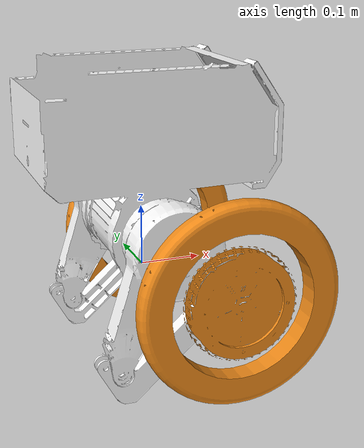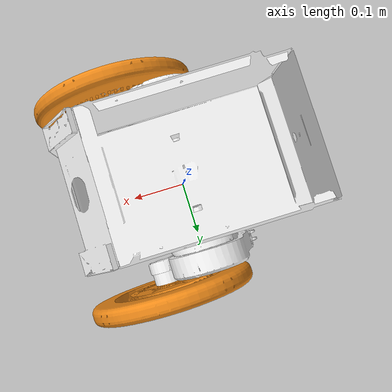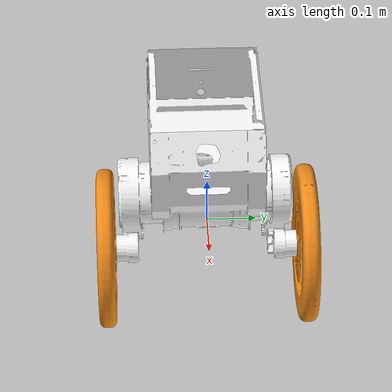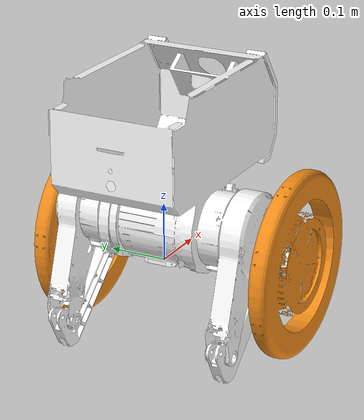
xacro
<?xml version="1.0"?>
<robot xmlns:xacro="http://wiki.ros.org/xacro" name="display">
  <xacro:arg name="use_tower" default="false" />
  <xacro:include filename="$(find tita_description)/diablo_plus_pro/xacro/materials.xacro"/>
  <xacro:include filename="$(find tita_description)/diablo_plus_pro/xacro/description.xacro" />

  <xacro:description />

</robot>

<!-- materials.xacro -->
<robot xmlns:xacro="http://www.ros.org/wiki/xacro">
  <material name="red">
    <color rgba="1.0 0.0 0.0 1.0"/>
  </material>
  <material name="silver">
    <color rgba="0.75294 0.75294 0.75294 1.0"/>
  </material>
  <material name="grey">
    <color rgba="0.69804 0.69804 0.69804 1.0"/>
  </material>
  <material name="white">
    <color rgba="1.0 1.0 1.0 1.0"/>
  </material>
</robot>

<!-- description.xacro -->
<robot xmlns:xacro="http://www.ros.org/wiki/xacro" name="diablo_pluspro">
  <xacro:macro name="description">
    <link name="base_link">
      <inertial>
        <origin xyz="0.02817 -0.0049865 0.16853" rpy="0 0 0" />
        <mass value="8.53" />
        <inertia ixx="0.8371974" ixy="-0.06254957" ixz="-0.01618499" iyy="0.8708397" iyz="0.003006719" izz="0.3425067" />
      </inertial>
      <visual>
        <origin xyz="0 0 0" rpy="0 0 0" />
        <geometry>
          <mesh filename="file://$(find tita_description)/diablo_plus_pro/meshes/base_link.STL" />
        </geometry>
        <material name="white"/>
      </visual>
      <collision>
        <origin xyz="0 0 0" rpy="0 0 0" />
        <geometry>
          <mesh filename="file://$(find tita_description)/diablo_plus_pro/meshes/base_link.STL" />
        </geometry>
      </collision>
    </link>

    <link name="imu_link">
      <inertial>
        <mass value="0.001"/>
        <origin rpy="0 0 0" xyz="0 0 0"/>
        <inertia ixx="0.0001" ixy="0" ixz="0" iyy="0.0001" iyz="0" izz="0.0001"/>
      </inertial>
      <visual>
        <origin rpy="0 0 0" xyz="0 0 0"/>
        <geometry>
          <box size="0.001 0.001 0.001"/>
        </geometry>
        <material name="red"/>
      </visual>
      <collision>
        <origin rpy="0 0 0" xyz="0 0 0"/>
        <geometry>
          <box size=".001 .001 .001"/>
        </geometry>
      </collision>
    </link>
    <joint name="imu_joint" type="fixed">
      <parent link="base_link"/>
      <child link="imu_link"/>
      <origin rpy="0 0 0" xyz="0 0 0"/>
    </joint>

   <link name="left_hip_link">
      <inertial>
        <origin xyz="-0.02147 0.083955 -0.036946" rpy="0 0 0" />
        <mass value="5.1" />
        <inertia ixx="0.01137421" ixy="0.00070511460" ixz="0.00124554" iyy="0.0082006541" iyz="0.0029798900" izz="0.0060506903" />
      </inertial>
      <visual>
        <origin xyz="0 0 0" rpy="0 0 0" />
        <geometry>
          <mesh filename="file://$(find tita_description)/diablo_plus_pro/meshes/left_hip_link.STL" />
        </geometry>
        <material name="white"/>
      </visual>
      <collision>
        <origin xyz="0 0 0" rpy="0 0 0" />
        <geometry>
          <mesh filename="file://$(find tita_description)/diablo_plus_pro/meshes/left_hip_link.STL" />
        </geometry>
      </collision>
    </link>
    <joint name="left_hip_joint" type="revolute">
      <origin xyz="0 0.0428 0.075997" rpy="0 0 0" />
      <parent link="base_link" />
      <child link="left_hip_link" />
      <axis xyz="0 1 0" />
      <limit lower="-1.0" upper="1.2" effort="80" velocity="15" />
    </joint>

    <link name="left_knee_link">
      <inertial>
        <origin xyz="0.091371 -0.0059746 0.042483" rpy="0 0 0" />
        <mass value="2.0" />
        <inertia ixx="0.0044665319" ixy="1.2345077E-05" ixz="-0.00023975799" iyy="0.0046256777" iyz="-0.00022848392" izz="0.0002702575" />
      </inertial>
      <visual>
        <origin xyz="0 0 0" rpy="0 0 0" />
        <geometry>
          <mesh filename="file://$(find tita_description)/diablo_plus_pro/meshes/left_knee_link.STL" />
        </geometry>
        <material name="white"/>
      </visual>
      <collision>
        <origin xyz="0 0 0" rpy="0 0 0" />
        <geometry>
          <mesh filename="file://$(find tita_description)/diablo_plus_pro/meshes/left_knee_link.STL" />
        </geometry>
      </collision>
    </link>
    <joint name="left_knee_joint" type="revolute">
      <origin xyz="-0.088027 0.11148 -0.17958" rpy="0 0 0" />
      <parent link="left_hip_link" />
      <child link="left_knee_link" />
      <axis xyz="0 1 0" />
      <limit lower="0" upper="1.2" effort="80" velocity="15" />
    </joint>

    <link name="left_wheel_link">
      <inertial>
        <origin xyz="-2.0379E-06 0.019153 -4.2928E-07" rpy="0 0 0" />
        <mass value="2.0" />
        <inertia ixx="0.013847" ixy="-1.0562E-07" ixz="4.372E-10" iyy="0.027351" iyz="-3.2677E-08" izz="0.013847" />
      </inertial>
      <visual>
        <origin xyz="0 0 0" rpy="0 0 0" />
        <geometry>
          <mesh filename="file://$(find tita_description)/diablo_plus_pro/meshes/left_wheel_link.STL" />
        </geometry>
        <material name="orange"/>
      </visual>
      <collision>
        <origin xyz="0 0.02 0" rpy="1.5707963 0 0" />
        <geometry>
          <cylinder radius="0.16" length="0.035"/>
        </geometry>
      </collision>
    </link>
    <joint name="left_wheel_joint" type="revolute">
      <origin xyz="0.17064 0.02266 0.10432" rpy="0 0 0" />
      <parent link="left_knee_link" />
      <child link="left_wheel_link" />
      <axis xyz="0 1 0" />
      <limit lower="-1000000" upper="1000000" effort="20" velocity="30" />
    </joint>

    <link name="right_hip_link">
      <inertial>
        <origin xyz="-0.02147 -0.083955 -0.036946" rpy="0 0 0" />
        <mass value="5.1" />
        <inertia ixx="0.01137421" ixy="0.00070511460" ixz="0.00124554" iyy="0.0082006541" iyz="0.0029798900" izz="0.0060506903" />
      </inertial>
      <visual>
        <origin xyz="0 0 0" rpy="0 0 0" />
        <geometry>
          <mesh filename="file://$(find tita_description)/diablo_plus_pro/meshes/right_hip_link.STL" />
        </geometry>
        <material name="white"/>
      </visual>
      <collision>
        <origin xyz="0 0 0" rpy="0 0 0" />
        <geometry>
          <mesh filename="file://$(find tita_description)/diablo_plus_pro/meshes/right_hip_link.STL" />
        </geometry>
      </collision>
    </link>
    <joint name="right_hip_joint" type="revolute">
      <origin xyz="0 -0.0528 0.075997" rpy="0 0 0" />
      <parent link="base_link" />
      <child link="right_hip_link" />
      <axis xyz="0 1 0" />
      <limit lower="-1.0" upper="1.2" effort="80" velocity="15" />
    </joint>

    <link name="right_knee_link">
      <inertial>
        <origin xyz="0.091173 -0.0018038 0.042402" rpy="0 0 0" />
        <mass value="2.17" />
        <inertia ixx="0.0044665319" ixy="1.2345077E-05" ixz="-0.00023975799" iyy="0.0046256777" iyz="-0.00022848392" izz="0.0002702575" />
      </inertial>
      <visual>
        <origin xyz="0 0 0" rpy="0 0 0" />
        <geometry>
          <mesh filename="file://$(find tita_description)/diablo_plus_pro/meshes/right_knee_link.STL" />
        </geometry>
        <material name="white"/>
      </visual>
      <collision>
        <origin xyz="0 0 0" rpy="0 0 0" />
        <geometry>
          <mesh filename="file://$(find tita_description)/diablo_plus_pro/meshes/right_knee_link.STL" />
        </geometry>
      </collision>
    </link>
    <joint name="right_knee_joint" type="revolute">
      <origin xyz="-0.088029 -0.10364 -0.17958" rpy="0 0 0" />
      <parent link="right_hip_link" />
      <child link="right_knee_link" />
      <axis xyz="0 1 0" />
      <limit lower="0" upper="1.2" effort="80" velocity="15" />
    </joint>

    <link name="right_wheel_link">
      <inertial>
        <origin xyz="7.6456E-08 -0.019153 -2.0799E-06" rpy="0 0 0" />
        <mass value="2.0" />
        <inertia ixx="0.013847" ixy="4.8112E-09" ixz="-1.9773E-09" iyy="0.027351" iyz="1.0933E-07" izz="0.013847" />
      </inertial>
      <visual>
        <origin xyz="0 0 0" rpy="0 0 0" />
        <geometry>
          <mesh filename="file://$(find tita_description)/diablo_plus_pro/meshes/right_wheel_link.STL" />
        </geometry>
        <material name="orange"/>
      </visual>
      <collision>
        <origin xyz="0 -0.02 0" rpy="1.5707963 0 0" />
        <geometry>
          <cylinder radius="0.16" length="0.035"/>
        </geometry>
      </collision>
    </link>
    <joint name="right_wheel_joint" type="revolute">
      <origin xyz="0.17064 -0.03046 0.10432" rpy="0 0 0" />
      <parent link="right_knee_link" />
      <child link="right_wheel_link" />
      <axis xyz="0 1 0" />
      <limit lower="-1000000" upper="1000000" effort="20" velocity="30" />
    </joint>

  </xacro:macro>
</robot>
